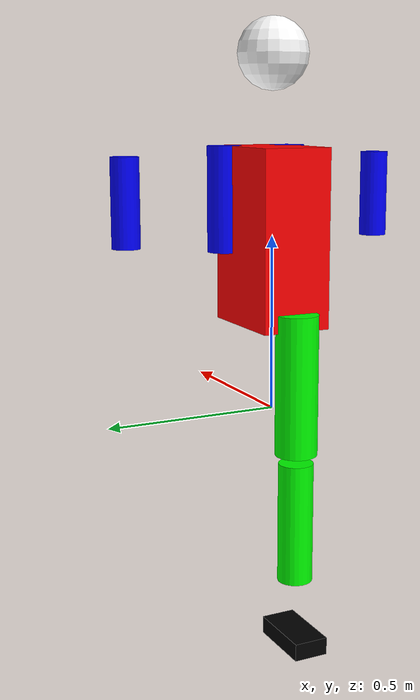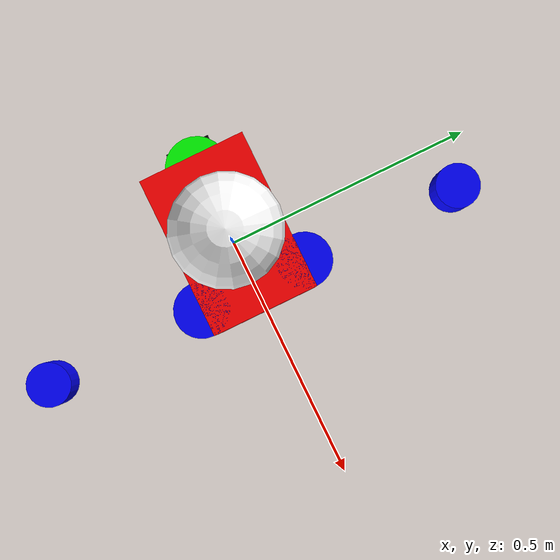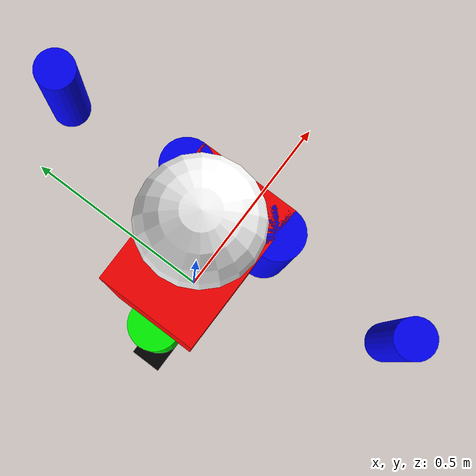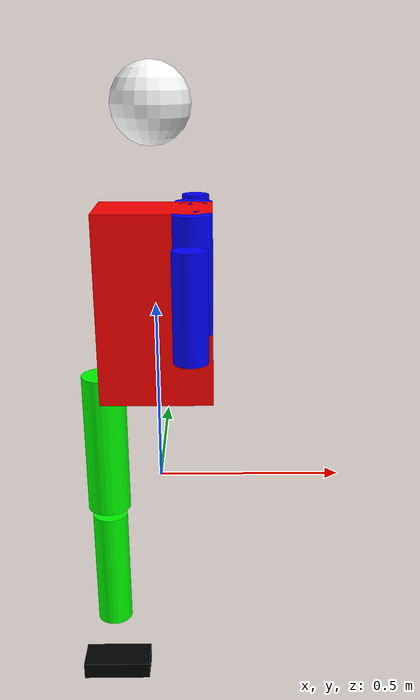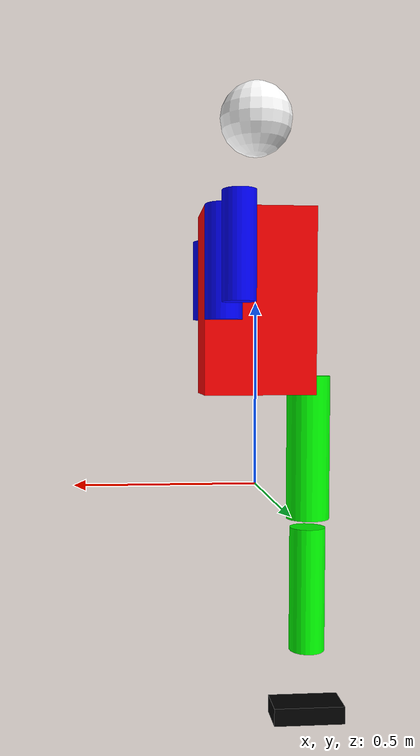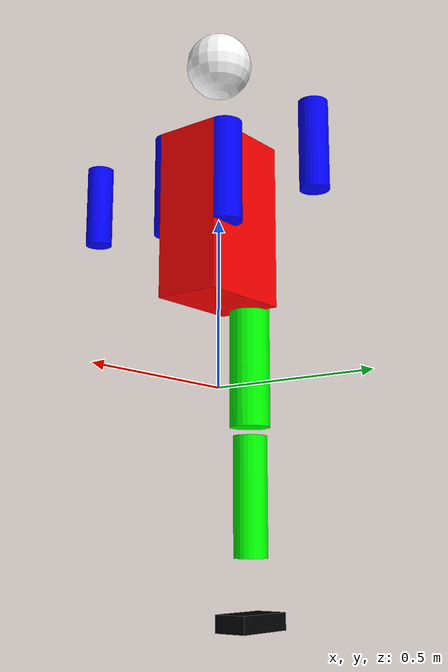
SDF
<?xml version="1.0" ?>
<sdf version="1.10">
  <model name="humanoid_robot">
    <!-- Torso -->
    <link name="torso">
      <pose>0 0 0.5 0 0 0</pose>
      <inertial>
        <mass>5.0</mass>
        <inertia>
          <ixx>0.2</ixx>
          <ixy>0</ixy>
          <ixz>0</ixz>
          <iyy>0.2</iyy>
          <iyz>0</iyz>
          <izz>0.2</izz>
        </inertia>
      </inertial>

      <visual name="torso_visual">
        <geometry>
          <box>
            <size>0.3 0.2 0.5</size>
          </box>
        </geometry>
        <material>
          <ambient>1.0 0.0 0.0 1.0</ambient>
          <diffuse>1.0 0.0 0.0 1.0</diffuse>
          <specular>1.0 0.0 0.0 1.0</specular>
        </material>
      </visual>

      <collision name="torso_collision">
        <geometry>
          <box>
            <size>0.3 0.2 0.5</size>
          </box>
        </geometry>
      </collision>
    </link>

    <!-- Head -->
    <link name="head">
      <pose>0 0 1.0 0 0 0</pose>
      <inertial>
        <mass>1.0</mass>
        <inertia>
          <ixx>0.01</ixx>
          <ixy>0</ixy>
          <ixz>0</ixz>
          <iyy>0.01</iyy>
          <iyz>0</iyz>
          <izz>0.01</izz>
        </inertia>
      </inertial>

      <visual name="head_visual">
        <geometry>
          <sphere>
            <radius>0.1</radius>
          </sphere>
        </geometry>
        <material>
          <ambient>1.0 1.0 1.0 1.0</ambient>
          <diffuse>1.0 1.0 1.0 1.0</diffuse>
          <specular>1.0 1.0 1.0 1.0</specular>
        </material>
      </visual>

      <collision name="head_collision">
        <geometry>
          <sphere>
            <radius>0.1</radius>
          </sphere>
        </geometry>
      </collision>
    </link>

    <!-- Right arm -->
    <link name="right_upper_arm">
      <pose>0.1 0.1 0.6 0 0 0</pose>
      <inertial>
        <mass>0.5</mass>
        <inertia>
          <ixx>0.01</ixx>
          <ixy>0</ixy>
          <ixz>0</ixz>
          <iyy>0.01</iyy>
          <iyz>0</iyz>
          <izz>0.01</izz>
        </inertia>
      </inertial>

      <visual name="right_upper_arm_visual">
        <geometry>
          <cylinder>
            <radius>0.05</radius>
            <length>0.3</length>
          </cylinder>
        </geometry>
        <material>
          <ambient>0.0 0.0 1.0 1.0</ambient>
          <diffuse>0.0 0.0 1.0 1.0</diffuse>
          <specular>0.0 0.0 1.0 1.0</specular>
        </material>
      </visual>

      <collision name="right_upper_arm_collision">
        <geometry>
          <cylinder>
            <radius>0.05</radius>
            <length>0.3</length>
          </cylinder>
        </geometry>
      </collision>
    </link>

    <link name="right_lower_arm">
      <pose>0.1 0.4 0.6 0 0 0</pose>
      <inertial>
        <mass>0.3</mass>
        <inertia>
          <ixx>0.005</ixx>
          <ixy>0</ixy>
          <ixz>0</ixz>
          <iyy>0.005</iyy>
          <iyz>0</iyz>
          <izz>0.005</izz>
        </inertia>
      </inertial>

      <visual name="right_lower_arm_visual">
        <geometry>
          <cylinder>
            <radius>0.04</radius>
            <length>0.25</length>
          </cylinder>
        </geometry>
        <material>
          <ambient>0.0 0.0 1.0 1.0</ambient>
          <diffuse>0.0 0.0 1.0 1.0</diffuse>
          <specular>0.0 0.0 1.0 1.0</specular>
        </material>
      </visual>

      <collision name="right_lower_arm_collision">
        <geometry>
          <cylinder>
            <radius>0.04</radius>
            <length>0.25</length>
          </cylinder>
        </geometry>
      </collision>
    </link>

    <!-- Left arm -->
    <link name="left_upper_arm">
      <pose>0.1 -0.1 0.6 0 0 0</pose>
      <inertial>
        <mass>0.5</mass>
        <inertia>
          <ixx>0.01</ixx>
          <ixy>0</ixy>
          <ixz>0</ixz>
          <iyy>0.01</iyy>
          <iyz>0</iyz>
          <izz>0.01</izz>
        </inertia>
      </inertial>

      <visual name="left_upper_arm_visual">
        <geometry>
          <cylinder>
            <radius>0.05</radius>
            <length>0.3</length>
          </cylinder>
        </geometry>
        <material>
          <ambient>0.0 0.0 1.0 1.0</ambient>
          <diffuse>0.0 0.0 1.0 1.0</diffuse>
          <specular>0.0 0.0 1.0 1.0</specular>
        </material>
      </visual>

      <collision name="left_upper_arm_collision">
        <geometry>
          <cylinder>
            <radius>0.05</radius>
            <length>0.3</length>
          </cylinder>
        </geometry>
      </collision>
    </link>

    <link name="left_lower_arm">
      <pose>0.1 -0.4 0.6 0 0 0</pose>
      <inertial>
        <mass>0.3</mass>
        <inertia>
          <ixx>0.005</ixx>
          <ixy>0</ixy>
          <ixz>0</ixz>
          <iyy>0.005</iyy>
          <iyz>0</iyz>
          <izz>0.005</izz>
        </inertia>
      </inertial>

      <visual name="left_lower_arm_visual">
        <geometry>
          <cylinder>
            <radius>0.04</radius>
            <length>0.25</length>
          </cylinder>
        </geometry>
        <material>
          <ambient>0.0 0.0 1.0 1.0</ambient>
          <diffuse>0.0 0.0 1.0 1.0</diffuse>
          <specular>0.0 0.0 1.0 1.0</specular>
        </material>
      </visual>

      <collision name="left_lower_arm_collision">
        <geometry>
          <cylinder>
            <radius>0.04</radius>
            <length>0.25</length>
          </cylinder>
        </geometry>
      </collision>
    </link>

    <!-- Right leg -->
    <link name="right_upper_leg">
      <pose>-0.15 0 0.1 0 0 0</pose>
      <inertial>
        <mass>1.0</mass>
        <inertia>
          <ixx>0.02</ixx>
          <ixy>0</ixy>
          <ixz>0</ixz>
          <iyy>0.02</iyy>
          <iyz>0</iyz>
          <izz>0.02</izz>
        </inertia>
      </inertial>

      <visual name="right_upper_leg_visual">
        <geometry>
          <cylinder>
            <radius>0.06</radius>
            <length>0.4</length>
          </cylinder>
        </geometry>
        <material>
          <ambient>0.0 1.0 0.0 1.0</ambient>
          <diffuse>0.0 1.0 0.0 1.0</diffuse>
          <specular>0.0 1.0 0.0 1.0</specular>
        </material>
      </visual>

      <collision name="right_upper_leg_collision">
        <geometry>
          <cylinder>
            <radius>0.06</radius>
            <length>0.4</length>
          </cylinder>
        </geometry>
      </collision>
    </link>

    <link name="right_lower_leg">
      <pose>-0.15 0 -0.3 0 0 0</pose>
      <inertial>
        <mass>0.8</mass>
        <inertia>
          <ixx>0.01</ixx>
          <ixy>0</ixy>
          <ixz>0</ixz>
          <iyy>0.01</iyy>
          <iyz>0</iyz>
          <izz>0.01</izz>
        </inertia>
      </inertial>

      <visual name="right_lower_leg_visual">
        <geometry>
          <cylinder>
            <radius>0.05</radius>
            <length>0.35</length>
          </cylinder>
        </geometry>
        <material>
          <ambient>0.0 1.0 0.0 1.0</ambient>
          <diffuse>0.0 1.0 0.0 1.0</diffuse>
          <specular>0.0 1.0 0.0 1.0</specular>
        </material>
      </visual>

      <collision name="right_lower_leg_collision">
        <geometry>
          <cylinder>
            <radius>0.05</radius>
            <length>0.35</length>
          </cylinder>
        </geometry>
      </collision>
    </link>

    <link name="right_foot">
      <pose>-0.15 0 -0.65 0 0 0</pose>
      <inertial>
        <mass>0.5</mass>
        <inertia>
          <ixx>0.001</ixx>
          <ixy>0</ixy>
          <ixz>0</ixz>
          <iyy>0.001</iyy>
          <iyz>0</iyz>
          <izz>0.001</izz>
        </inertia>
      </inertial>

      <visual name="right_foot_visual">
        <geometry>
          <box>
            <size>0.2 0.1 0.05</size>
          </box>
        </geometry>
        <material>
          <ambient>0.0 0.0 0.0 1.0</ambient>
          <diffuse>0.0 0.0 0.0 1.0</diffuse>
          <specular>0.0 0.0 0.0 1.0</specular>
        </material>
      </visual>

      <collision name="right_foot_collision">
        <geometry>
          <box>
            <size>0.2 0.1 0.05</size>
          </box>
        </geometry>
      </collision>
    </link>

    <!-- Left leg -->
    <link name="left_upper_leg">
      <pose>-0.15 0 0.1 0 0 0</pose>
      <inertial>
        <mass>1.0</mass>
        <inertia>
          <ixx>0.02</ixx>
          <ixy>0</ixy>
          <ixz>0</ixz>
          <iyy>0.02</iyy>
          <iyz>0</iyz>
          <izz>0.02</izz>
        </inertia>
      </inertial>

      <visual name="left_upper_leg_visual">
        <geometry>
          <cylinder>
            <radius>0.06</radius>
            <length>0.4</length>
          </cylinder>
        </geometry>
        <material>
          <ambient>0.0 1.0 0.0 1.0</ambient>
          <diffuse>0.0 1.0 0.0 1.0</diffuse>
          <specular>0.0 1.0 0.0 1.0</specular>
        </material>
      </visual>

      <collision name="left_upper_leg_collision">
        <geometry>
          <cylinder>
            <radius>0.06</radius>
            <length>0.4</length>
          </cylinder>
        </geometry>
      </collision>
    </link>

    <link name="left_lower_leg">
      <pose>-0.15 0 -0.3 0 0 0</pose>
      <inertial>
        <mass>0.8</mass>
        <inertia>
          <ixx>0.01</ixx>
          <ixy>0</ixy>
          <ixz>0</ixz>
          <iyy>0.01</iyy>
          <iyz>0</iyz>
          <izz>0.01</izz>
        </inertia>
      </inertial>

      <visual name="left_lower_leg_visual">
        <geometry>
          <cylinder>
            <radius>0.05</radius>
            <length>0.35</length>
          </cylinder>
        </geometry>
        <material>
          <ambient>0.0 1.0 0.0 1.0</ambient>
          <diffuse>0.0 1.0 0.0 1.0</diffuse>
          <specular>0.0 1.0 0.0 1.0</specular>
        </material>
      </visual>

      <collision name="left_lower_leg_collision">
        <geometry>
          <cylinder>
            <radius>0.05</radius>
            <length>0.35</length>
          </cylinder>
        </geometry>
      </collision>
    </link>

    <link name="left_foot">
      <pose>-0.15 0 -0.65 0 0 0</pose>
      <inertial>
        <mass>0.5</mass>
        <inertia>
          <ixx>0.001</ixx>
          <ixy>0</ixy>
          <ixz>0</ixz>
          <iyy>0.001</iyy>
          <iyz>0</iyz>
          <izz>0.001</izz>
        </inertia>
      </inertial>

      <visual name="left_foot_visual">
        <geometry>
          <box>
            <size>0.2 0.1 0.05</size>
          </box>
        </geometry>
        <material>
          <ambient>0.0 0.0 0.0 1.0</ambient>
          <diffuse>0.0 0.0 0.0 1.0</diffuse>
          <specular>0.0 0.0 0.0 1.0</specular>
        </material>
      </visual>

      <collision name="left_foot_collision">
        <geometry>
          <box>
            <size>0.2 0.1 0.05</size>
          </box>
        </geometry>
      </collision>
    </link>

    <!-- Joints -->
    <joint name="torso_head_joint" type="revolute">
      <parent>torso</parent>
      <child>head</child>
      <axis>
        <xyz>0 1 0</xyz>
        <limit>
          <lower>-0.5</lower>
          <upper>0.5</upper>
        </limit>
      </axis>
    </joint>

    <joint name="right_shoulder_joint" type="revolute">
      <parent>torso</parent>
      <child>right_upper_arm</child>
      <axis>
        <xyz>0 0 1</xyz>
        <limit>
          <lower>-1.57</lower>
          <upper>1.57</upper>
        </limit>
      </axis>
    </joint>

    <joint name="right_elbow_joint" type="revolute">
      <parent>right_upper_arm</parent>
      <child>right_lower_arm</child>
      <axis>
        <xyz>0 1 0</xyz>
        <limit>
          <lower>0</lower>
          <upper>2.35</upper>
        </limit>
      </axis>
    </joint>

    <joint name="left_shoulder_joint" type="revolute">
      <parent>torso</parent>
      <child>left_upper_arm</child>
      <axis>
        <xyz>0 0 1</xyz>
        <limit>
          <lower>-1.57</lower>
          <upper>1.57</upper>
        </limit>
      </axis>
    </joint>

    <joint name="left_elbow_joint" type="revolute">
      <parent>left_upper_arm</parent>
      <child>left_lower_arm</child>
      <axis>
        <xyz>0 1 0</xyz>
        <limit>
          <lower>0</lower>
          <upper>2.35</upper>
        </limit>
      </axis>
    </joint>

    <joint name="right_hip_joint" type="revolute">
      <parent>torso</parent>
      <child>right_upper_leg</child>
      <axis>
        <xyz>0 1 0</xyz>
        <limit>
          <lower>-1.57</lower>
          <upper>0.78</upper>
        </limit>
      </axis>
    </joint>

    <joint name="right_knee_joint" type="revolute">
      <parent>right_upper_leg</parent>
      <child>right_lower_leg</child>
      <axis>
        <xyz>0 1 0</xyz>
        <limit>
          <lower>0</lower>
          <upper>2.35</upper>
        </limit>
      </axis>
    </joint>

    <joint name="right_ankle_joint" type="revolute">
      <parent>right_lower_leg</parent>
      <child>right_foot</child>
      <axis>
        <xyz>0 0 1</xyz>
        <limit>
          <lower>-0.78</lower>
          <upper>0.78</upper>
        </limit>
      </axis>
    </joint>

    <joint name="left_hip_joint" type="revolute">
      <parent>torso</parent>
      <child>left_upper_leg</child>
      <axis>
        <xyz>0 1 0</xyz>
        <limit>
          <lower>-1.57</lower>
          <upper>0.78</upper>
        </limit>
      </axis>
    </joint>

    <joint name="left_knee_joint" type="revolute">
      <parent>left_upper_leg</parent>
      <child>left_lower_leg</child>
      <axis>
        <xyz>0 1 0</xyz>
        <limit>
          <lower>0</lower>
          <upper>2.35</upper>
        </limit>
      </axis>
    </joint>

    <joint name="left_ankle_joint" type="revolute">
      <parent>left_lower_leg</parent>
      <child>left_foot</child>
      <axis>
        <xyz>0 0 1</xyz>
        <limit>
          <lower>-0.78</lower>
          <upper>0.78</upper>
        </limit>
      </axis>
    </joint>
  </model>
</sdf>
